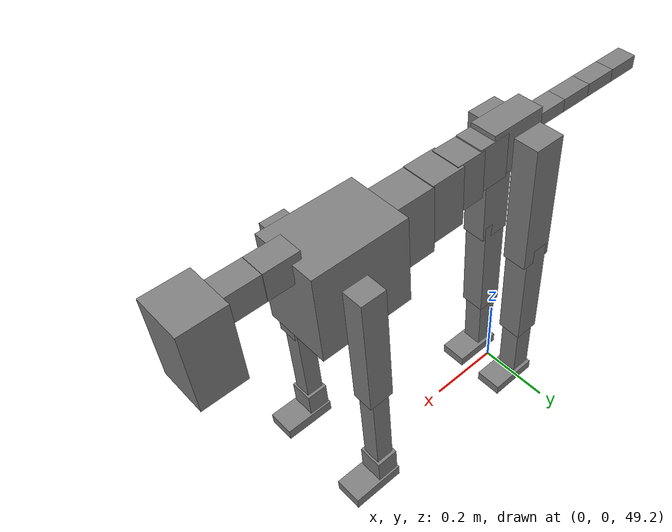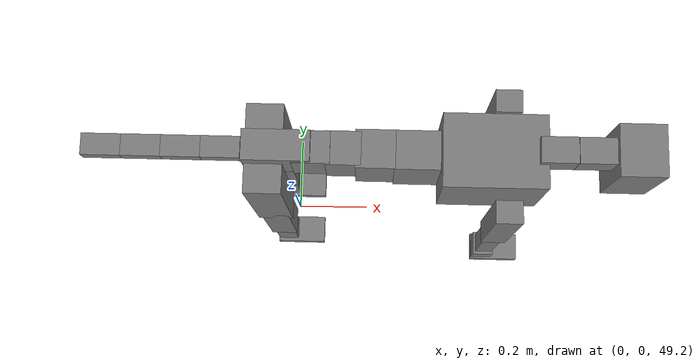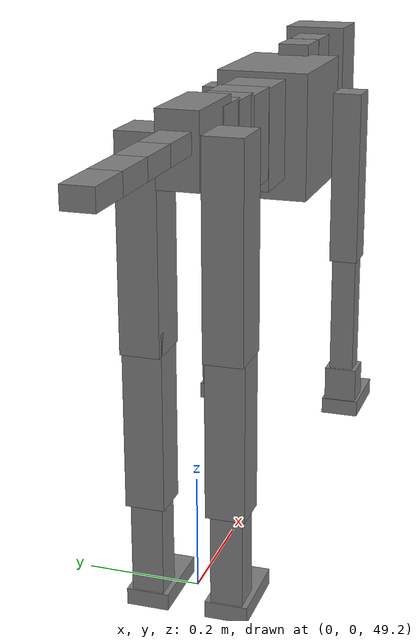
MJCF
<mujoco model="dog">

    <default>
        <joint armature="0.02" stiffness="1" damping="0.2" limited="true"/>
        <geom condim="3" friction="1 0.05 0.05" margin="0.01"/>
        <motor ctrllimited="true" ctrlrange="-1.0 1.0" forcelimited="true" gear="50"/>
    </default>

    <compiler inertiafromgeom="true" angle="radian"/>

    <option timestep="0.016" iterations="50" tolerance="1e-10" solver="Newton" jacobian="dense" cone="pyramidal"/>

    <size nconmax="20000" njmax="60000" nstack="5000000"/>
    <visual>
        <map force="0.1" zfar="30"/>
        <rgba haze="0.15 0.25 0.35 1"/>
        <quality shadowsize="2048"/>
        <global offwidth="800" offheight="800"/>
    </visual>

    <asset>
        <texture type="skybox" builtin="gradient" rgb1="0.3 0.5 0.7" rgb2="0 0 0" width="512" height="512"/>
        <texture name="texplane" type="2d" builtin="checker" rgb1=".2 .3 .4" rgb2=".1 0.15 0.2" width="512" height="512"
                 mark="cross" markrgb=".8 .8 .8"/>
        <texture name="texgeom" type="cube" builtin="flat" mark="cross" width="127" height="1278" rgb1="0.8 0.6 0.4"
                 rgb2="0.8 0.6 0.4" markrgb="1 1 1" random="0.01"/>

        <material name="matplane" reflectance="0.3" texture="texplane" texrepeat="1 1" texuniform="true"/>
        <material name="matgeom" texture="texgeom" texuniform="true" rgba="0.8 0.6 .4 1"/>
    </asset>

    <worldbody>
        <geom name="floor" pos="0 0 0" size="0 0 .25" type="plane" material="matplane" condim="3"/>

        <light directional="false" diffuse=".2 .2 .2" specular="0 0 0" pos="0 0 5" dir="0 0 -1" castshadow="false"/>
        <light mode="targetbodycom" target="torso" directional="false" diffuse=".8 .8 .8" specular="0.3 0.3 0.3"
               pos="0 0 4.0" dir="0 0 -1"/>

        <body name="root" pos="0 0 50">
            <freejoint name="root_1"/>
            <geom type="box" pos="0 0 -0.02" size="0.0774  0.0358  0.063" density="2030"/>

            <body name="spine1" pos="0.054 0 0">
                <joint name="spine1_y" axis="0 1 0" range="0 0.7" limited="true"/>
                <geom type="box" pos="0.02375 0 -0.03" size="0.04375  0.0375  0.05985" density="2030"/>

                <body name="spine2" pos="0.0612 0 0">
                    <joint name="spine2_y" axis="0 1 0" range="-0.15 0.15" limited="true"/>
                    <geom type="box" pos="0.03555  0  -0.04" size="0.04055  0.039  0.06615" density="2030"/>

                    <body name="spine3" pos="0.0730 0 0">
                        <joint name="spine3_y" axis="0 1 0" range="-0.15 0.15" limited="true"/>
                        <geom type="box" pos="0.03555  0  -0.057" size="0.04555  0.0445  0.081" density="2030"/>

                        <body name="spine4" pos="0.0780 0 0">
                            <joint name="spine4_y" axis="0 1 0" range="-0.15 0.15" limited="true"/>
                            <geom type="box" pos="0.05265  0  -0.07" size="0.05265  0.045  0.09135" density="2030"/>

                            <body name="torso" pos="0.1082 0 0">
                                <joint name="torso_y" axis="0 1 0" range="-0.15 0.15" limited="true"/>
                                <geom type="box" pos="0.11925  0  -0.085" size="0.11925  0.085  0.11745"
                                      density="2030"/>

                                <body name="neck1" pos="0.2160  0   0.0180">
                                    <joint name="neck1_y" axis="0 1 0" range="-1.2  -1" limited="true"/>
                                    <geom type="box" pos="0.0423  0  0" size="0.0423  0.03  0.036" density="2325"/>

                                    <body name="neck2" pos="0.0853  0  0">
                                        <joint name="neck2_y" axis="0 1 0" range="0.1  0" limited="true"/>
                                        <geom type="box" pos="0.0423  0  0" size="0.0423  0.03  0.036" density="2325"/>

                                        <body name="head" pos="0.0853  0  0">
                                            <joint name="head_y" axis="0 1 0" range="-0.3  -0.2" limited="true"/>
                                            <geom type="box" pos="0.0531  0  -0.055" size="0.0531  0.06  0.1044"
                                                  density="4030"/>

                                        </body>
                                    </body>
                                </body>

                                <body name="front_shoulder" pos="0.156  0   -0.0480">
                                    <joint name="front_shoulder_y" axis="0 1 0" range="-1 1.5" limited="true"/>
                                    <geom type="box" pos="0 0.13 -0.1375" size="0.0313  0.0267  0.1642" density="1158"/>
                                    <geom type="box" pos="0 -0.13 -0.1375" size="0.0313  0.0267  0.1642"
                                          density="1158"/>

                                    <body name="front_elbow" pos="0  0  -0.2750">
                                        <joint name="front_elbow_y" axis="0 1 0" range="-2 0" limited="true"/>
                                        <geom type="box" pos="0 0.13 -0.1326" size="0.0224  0.0229  0.1326"
                                              density="1081"/>
                                        <geom type="box" pos="0 -0.13 -0.1326" size="0.0224  0.0229  0.1326"
                                              density="1081"/>

                                        <body name="front_wrist" pos="0  0  -0.2653">
                                            <joint name="front_wrist_y" axis="0 1 0" range="-0.2 0" limited="true"/>
                                            <geom type="box" pos="0 0.13 -0.0337" size="0.0276  0.0307  0.0468"
                                                  density="1664"/>
                                            <geom type="box" pos="0 -0.13 -0.0337" size="0.0276  0.0307  0.0468"
                                                  density="1664"/>

                                            <body name="front_finger_end" pos="0  0  -0.0673">
                                                <joint name="front_finger_y" axis="0 1 0" range="-0.4 1"
                                                       limited="true"/>
                                                <geom type="box" pos="0.0355  0.13  -0.0005"
                                                      size="0.0650  0.0355  0.0155" density="1515"/>
                                                <geom type="box" pos="0.0355  -0.13  -0.0005"
                                                      size="0.0650  0.0355  0.0155" density="1515"/>

                                            </body>

                                        </body>
                                    </body>
                                </body>

                            </body>
                        </body>
                    </body>
                </body>
            </body>

            <body name="back_hip" pos="-0.03 0 -0.018">
                <joint name="back_hip_y" axis="0 1 0" range="-1.5 0.3" limited="true"/>
                <geom type="box" pos="0 0.07 -0.1598" size="0.0434  0.0340  0.1826" density="1154"/>
                <geom type="box" pos="0 -0.07 -0.1598" size="0.0434  0.0340  0.1826" density="1154"/>

                <body name="back_knee" pos="0  0  -0.3196">
                    <joint name="back_knee_y" axis="0 1 0" range="0 2.8" limited="true"/>
                    <geom type="box" pos="0 0.07 -0.1404" size="0.0345  0.0340  0.1560" density="1227"/>
                    <geom type="box" pos="0 -0.07 -0.1404" size="0.0345  0.0340  0.1560" density="1227"/>

                    <body name="back_ankle" pos="0  0  -0.2808">
                        <joint name="back_ankle_y" axis="0 1 0" range="-2.2 0" limited="true"/>
                        <geom type="box" pos="0 0.07 -0.0951" size="0.0277  0.0277  0.1063" density="1284"/>
                        <geom type="box" pos="0 -0.07 -0.0951" size="0.0277  0.0277  0.1063" density="1284"/>

                        <body name="back_toe_end" pos="0  0  -0.1902">
                            <joint name="back_toe_y" axis="0 1 0" range="-0.4 1" limited="true"/>
                            <geom type="box" pos="0.0371  0.07  0.0004" size="0.0679  0.0371  0.0146" density="1515"/>
                            <geom type="box" pos="0.0371  -0.07  0.0004" size="0.0679  0.0371  0.0146" density="1515"/>

                        </body>
                    </body>
                </body>
            </body>

            <body name="tail1" pos="-0.074 0 -0.006">
                <joint name="tail1_y" axis="0 1 0" range="-0.2 0.2" limited="true"/>
                <geom type="box" pos="-0.0536  0  0" size="0.045  0.025  0.0175" density="1587"/>

                <body name="tail2" pos="-0.09 0 0">
                    <joint name="tail2_y" axis="0 1 0" range="-0.2 0.2" limited="true"/>
                    <geom type="box" pos="-0.0536  0  0" size="0.045  0.025  0.0175" density="1587"/>

                    <body name="tail3" pos="-0.09 0 0">
                        <joint name="tail3_y" axis="0 1 0" range="-0.2 0.2" limited="true"/>
                        <geom type="box" pos="-0.0536  0  0" size="0.045  0.025  0.0175" density="1587"/>

                        <body name="tail4" pos="-0.09 0 0">
                            <joint name="tail4_y" axis="0 1 0" range="-0.2 0.2" limited="true"/>
                            <geom type="box" pos="-0.0536  0  0" size="0.045  0.025  0.0175" density="1587"/>

                        </body>
                    </body>
                </body>
            </body>
        </body>
    </worldbody>

    <actuator>
        <motor joint="spine1_y" forcerange="-150 150     "/>
        <motor joint="spine2_y" forcerange="-150 150     "/>
        <motor joint="spine3_y" forcerange="-150 150     "/>
        <motor joint="spine4_y" forcerange="-150 150     "/>
        <motor joint="torso_y" forcerange="-150 150     "/>
        <motor joint="neck1_y" forcerange="-100 100       "/>
        <motor joint="neck2_y" forcerange="-100 100       "/>
        <motor joint="head_y" forcerange="-150 150       "/>
        <motor joint="front_shoulder_y" forcerange="-164.47 113.83"/>
        <motor joint="front_elbow_y" forcerange="-115.78 151.04"/>
        <motor joint="front_wrist_y" forcerange="-106.45 138.90"/>
        <motor joint="front_finger_y" forcerange="-81.90 67.18"/>
        <motor joint="back_hip_y" forcerange="-266.58 387.12"/>
        <motor joint="back_knee_y" forcerange="-386.76 307.24"/>
        <motor joint="back_angle_y" forcerange="-239.04 103.69"/>
        <motor joint="back_toe_y" forcerange="-97.27 119.15"/>
        <motor joint="tail1_y" forcerange="-50 50     "/>
        <motor joint="tail2_y" forcerange="-50 50     "/>
        <motor joint="tail3_y" forcerange="-50 50     "/>
        <motor joint="tail4_y" forcerange="-50 50     "/>
    </actuator>
</mujoco>
